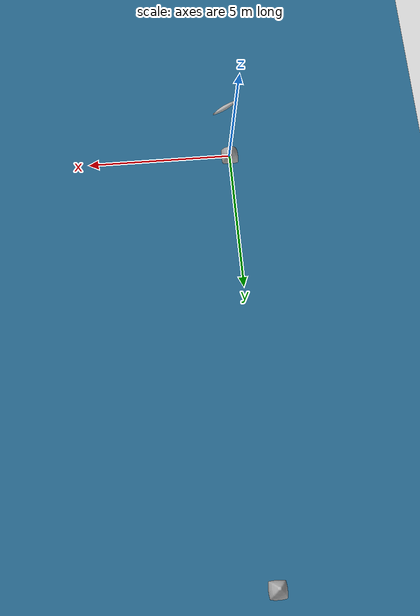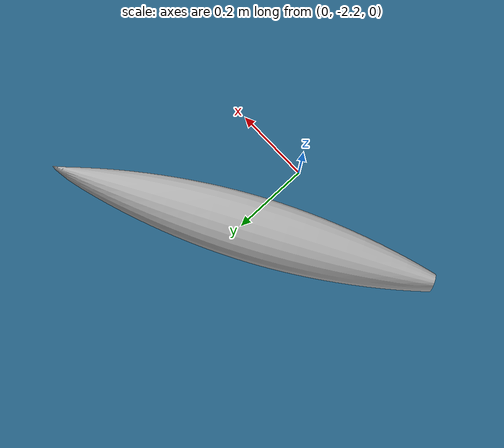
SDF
<?xml version="1.0"?>
<sdf version="1.7">
  <world name="lotusim">
    <scene>
      <ambient>1.0 1.0 1.0</ambient>
      <background>0.6 0.75 0.9</background>
      <grid>false</grid>
    </scene>

    <physics type="ode">
      <max_step_size>0.01</max_step_size>
      <real_time_factor>1</real_time_factor>
      <real_time_update_rate>0</real_time_update_rate>
    </physics>

    <spherical_coordinates>
      <surface_model>EARTH_WGS84</surface_model>
      <world_frame_orientation>ENU</world_frame_orientation>
      <latitude_deg>1.2421</latitude_deg>
      <longitude_deg>103.7198</longitude_deg>
      <elevation>0</elevation>
      <heading_deg>0</heading_deg>
    </spherical_coordinates>

    <!-- xdyn provides all forces; Gazebo gravity is off. -->
    <gravity>0 0 0</gravity>

    <plugin filename="physics_interface_plugin"
            name="lotusim::gazebo::PhysicsInterfacePlugin"/>
    <plugin filename="multi_agent_system_plugin"
            name="lotusim::gazebo::MultiAgentSystem"/>
    <plugin filename="lotusim_sensor_plugin"
            name="lotusim::sensor::LotusimSensorPlugin"/>
    <plugin filename="render_plugin" name="lotusim::gazebo::RenderPlugin">
      <connection_protocol>ROS2</connection_protocol>
    </plugin>
    <plugin filename="gz-sim-scene-broadcaster-system"
            name="gz::sim::systems::SceneBroadcaster"/>

    <light type="directional" name="sun">
      <cast_shadows>true</cast_shadows>
      <pose>0 0 10 0 0 0</pose>
      <diffuse>0.9 0.9 0.9 1</diffuse>
      <specular>0.3 0.3 0.3 1</specular>
      <direction>-0.4 0.3 -0.9</direction>
    </light>

    <!-- Flat sea surface at the waterline (visual only). -->
    <model name="sea">
      <static>true</static>
      <link name="surface">
        <visual name="surface">
          <geometry>
            <plane>
              <normal>0 0 1</normal>
              <size>60 60</size>
            </plane>
          </geometry>
          <material>
            <ambient>0.10 0.30 0.45 1</ambient>
            <diffuse>0.15 0.40 0.55 1</diffuse>
            <specular>0.2 0.2 0.2 1</specular>
          </material>
        </visual>
      </link>
    </model>

    <include>
      <!-- gz is ENU: xdyn NED windward mark (15 North, 0 East) renders at ENU (x=0, y=15). -->
      <uri>model://regatta_buoy</uri><name>mark_windward</name><pose>0 15 0 0 0 0</pose>
    </include>
    <include>
      <uri>model://regatta_buoy</uri><name>mark_leeward</name><pose>0 0 0 0 0 0</pose>
    </include>

    <include>
      <uri>model://focus_v2</uri>
      <name>focus_v2</name>
      <!-- 2 m South (ENU y=-2) of the leeward mark: start behind the line, not on the buoy. -->
      <pose>0 -2 0 0 0 0.5236</pose>

      <lotus_param>
        <physics_engine_interface>
          <surface>
            <interface_type>XDynWebSocket</interface_type>
            <uri>ws://127.0.0.1:12345</uri>
            <!-- Angle-commanded actuators: full xdyn command signals, seeded to
                 0.0 at spawn so the co-sim does not throw before the first ROS
                 setpoint. -->
            <control_surfaces>
              <sail>mainsail(sheet)</sail>
              <rudder>rudder(helm)</rudder>
            </control_surfaces>
          </surface>
          <init_state>Surface</init_state>
        </physics_engine_interface>
        <render_interface>
          <publish_render>true</publish_render>
          <renderer_type_name>focus_v2</renderer_type_name>
        </render_interface>
      </lotus_param>
    </include>
  </world>
</sdf>

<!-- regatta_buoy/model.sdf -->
<sdf version="1.10">
  <model name="regatta_buoy">
    <static>true</static>
    <link name="buoy">
      <visual name="buoy">
        <geometry><mesh><uri>model://regatta_buoy/meshes/regatta_buoy.obj</uri></mesh></geometry>
      </visual>
    </link>
  </model>
</sdf>

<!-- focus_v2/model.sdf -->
<sdf version="1.10">
  <model name="focus_v2">
    <!-- Physics is provided by the external xdyn co-simulation (see focus_v2.yaml);
         Gazebo only carries the visual + a coarse collision box. -->
    <link name="base_link">
      <visual name="visual">
        <!-- OBJ renders in the Gazebo GUI (the Blender COLLADA loader fails
             silently in gz-common). Mesh is modelled bow on +Y to match the
             vessel advance axis in the link frame. -->
        <geometry>
          <mesh>
            <uri>model://focus_v2/meshes/focus_v2.obj</uri>
          </mesh>
        </geometry>
      </visual>

      <collision name="base_collision">
        <geometry>
          <box>
            <size>0.17 0.995 0.13</size>
          </box>
        </geometry>
      </collision>
    </link>
  </model>
</sdf>
